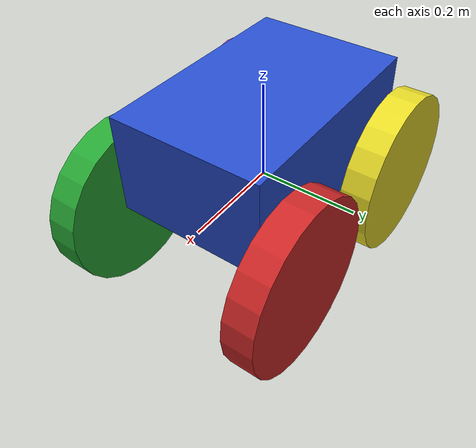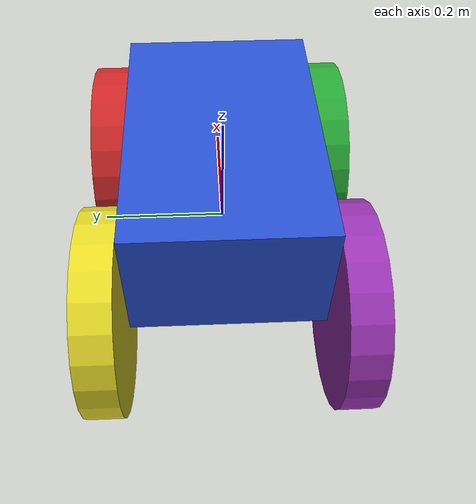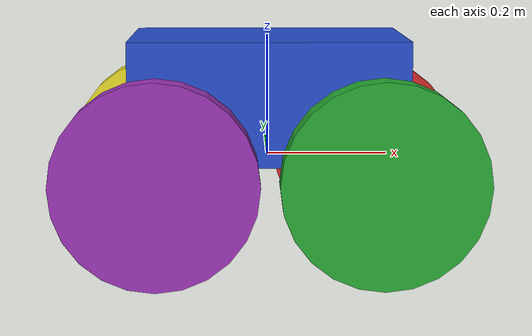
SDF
<sdf version='1.11'>
  <model name='qwacr'>
    <link name='base_link'>
      <inertial>
        <pose>0 0 0 0 0 0</pose>
        <mass>25</mass>
        <inertia>
          <ixx>0.050000000000000003</ixx>
          <ixy>0</ixy>
          <ixz>0</ixz>
          <iyy>0.059999999999999998</iyy>
          <iyz>0</iyz>
          <izz>0.070000000000000007</izz>
        </inertia>
      </inertial>
      <collision name='base_link_collision'>
        <pose>0 0 0.10000000000000001 0 0 0</pose>
        <geometry>
          <box>
            <size>0.45000000000000001 0.29999999999999999 0.20000000000000001</size>
          </box>
        </geometry>
        <surface>
          <contact>
            <ode/>
          </contact>
          <friction>
            <ode/>
          </friction>
        </surface>
      </collision>
      <visual name='base_link_visual'>
        <pose>0 0 0.10000000000000001 0 0 0</pose>
        <geometry>
          <box>
            <size>0.45000000000000001 0.29999999999999999 0.20000000000000001</size>
          </box>
        </geometry>
        <material>
          <script>
            <name>Gazebo/Blue</name>
            <uri>file://media/materials/scripts/gazebo.material</uri>
          </script>
          <diffuse>0 0 1 1</diffuse>
          <ambient>0 0 1 1</ambient>
        </material>
      </visual>
    </link>
    <joint name='base_to_back_left_wheel' type='revolute'>
      <pose relative_to='base_link'>-0.17999999999999999 0.19 -0.02 0 0 0</pose>
      <parent>base_link</parent>
      <child>back_left_wheel_link</child>
      <axis>
        <xyz>0 1 0</xyz>
        <limit>
          <effort>6.2000000000000002</effort>
          <velocity>104</velocity>
          <lower>-inf</lower>
          <upper>inf</upper>
        </limit>
        <dynamics>
          <damping>0.0001</damping>
          <friction>0.001</friction>
          <spring_reference>0</spring_reference>
          <spring_stiffness>0</spring_stiffness>
        </dynamics>
      </axis>
    </joint>
    <link name='back_left_wheel_link'>
      <pose relative_to='base_to_back_left_wheel'>0 0 0 0 0 0</pose>
      <inertial>
        <pose>0 0 0 0 0 0</pose>
        <mass>3</mass>
        <inertia>
          <ixx>0.002</ixx>
          <ixy>0</ixy>
          <ixz>0</ixz>
          <iyy>0.002</iyy>
          <iyz>0</iyz>
          <izz>0.002</izz>
        </inertia>
      </inertial>
      <collision name='back_left_wheel_link_collision'>
        <pose>0 0 0 1.5708 0 0</pose>
        <geometry>
          <cylinder>
            <length>0.059999999999999998</length>
            <radius>0.16500000000000001</radius>
          </cylinder>
        </geometry>
        <surface>
          <contact>
            <ode/>
          </contact>
          <friction>
            <ode/>
          </friction>
        </surface>
      </collision>
      <visual name='back_left_wheel_link_visual'>
        <pose>0 0 0 1.5708 0 0</pose>
        <geometry>
          <cylinder>
            <length>0.059999999999999998</length>
            <radius>0.16500000000000001</radius>
          </cylinder>
        </geometry>
        <material>
          <script>
            <name>Gazebo/Yellow</name>
            <uri>file://media/materials/scripts/gazebo.material</uri>
          </script>
          <diffuse>1 1 0 1</diffuse>
          <ambient>1 1 0 1</ambient>
        </material>
      </visual>
    </link>
    <joint name='base_to_back_right_wheel' type='revolute'>
      <pose relative_to='base_link'>-0.17999999999999999 -0.19 -0.02 0 0 0</pose>
      <parent>base_link</parent>
      <child>back_right_wheel_link</child>
      <axis>
        <xyz>0 1 0</xyz>
        <limit>
          <effort>6.2000000000000002</effort>
          <velocity>104</velocity>
          <lower>-inf</lower>
          <upper>inf</upper>
        </limit>
        <dynamics>
          <damping>0.0001</damping>
          <friction>0.001</friction>
          <spring_reference>0</spring_reference>
          <spring_stiffness>0</spring_stiffness>
        </dynamics>
      </axis>
    </joint>
    <link name='back_right_wheel_link'>
      <pose relative_to='base_to_back_right_wheel'>0 0 0 0 0 0</pose>
      <inertial>
        <pose>0 0 0 0 0 0</pose>
        <mass>3</mass>
        <inertia>
          <ixx>0.002</ixx>
          <ixy>0</ixy>
          <ixz>0</ixz>
          <iyy>0.002</iyy>
          <iyz>0</iyz>
          <izz>0.002</izz>
        </inertia>
      </inertial>
      <collision name='back_right_wheel_link_collision'>
        <pose>0 0 0 1.5708 0 0</pose>
        <geometry>
          <cylinder>
            <length>0.059999999999999998</length>
            <radius>0.16500000000000001</radius>
          </cylinder>
        </geometry>
        <surface>
          <contact>
            <ode/>
          </contact>
          <friction>
            <ode/>
          </friction>
        </surface>
      </collision>
      <visual name='back_right_wheel_link_visual'>
        <pose>0 0 0 1.5708 0 0</pose>
        <geometry>
          <cylinder>
            <length>0.059999999999999998</length>
            <radius>0.16500000000000001</radius>
          </cylinder>
        </geometry>
        <material>
          <script>
            <name>Gazebo/Purple</name>
            <uri>file://media/materials/scripts/gazebo.material</uri>
          </script>
          <diffuse>1 0 1 1</diffuse>
          <ambient>1 0 1 1</ambient>
        </material>
      </visual>
    </link>
    <joint name='base_to_front_left_wheel' type='revolute'>
      <pose relative_to='base_link'>0.17999999999999999 0.19 -0.02 0 0 0</pose>
      <parent>base_link</parent>
      <child>front_left_wheel_link</child>
      <axis>
        <xyz>0 1 0</xyz>
        <limit>
          <effort>6.2000000000000002</effort>
          <velocity>104</velocity>
          <lower>-inf</lower>
          <upper>inf</upper>
        </limit>
        <dynamics>
          <damping>0.0001</damping>
          <friction>0.001</friction>
          <spring_reference>0</spring_reference>
          <spring_stiffness>0</spring_stiffness>
        </dynamics>
      </axis>
    </joint>
    <link name='front_left_wheel_link'>
      <pose relative_to='base_to_front_left_wheel'>0 0 0 0 0 0</pose>
      <inertial>
        <pose>0 0 0 0 0 0</pose>
        <mass>1</mass>
        <inertia>
          <ixx>0.001</ixx>
          <ixy>0</ixy>
          <ixz>0</ixz>
          <iyy>0.001</iyy>
          <iyz>0</iyz>
          <izz>0.001</izz>
        </inertia>
      </inertial>
      <collision name='front_left_wheel_link_collision'>
        <pose>0 0 0 1.5708 0 0</pose>
        <geometry>
          <cylinder>
            <length>0.059999999999999998</length>
            <radius>0.16500000000000001</radius>
          </cylinder>
        </geometry>
        <surface>
          <contact>
            <ode/>
          </contact>
          <friction>
            <ode/>
          </friction>
        </surface>
      </collision>
      <visual name='front_left_wheel_link_visual'>
        <pose>0 0 0 1.5708 0 0</pose>
        <geometry>
          <cylinder>
            <length>0.059999999999999998</length>
            <radius>0.16500000000000001</radius>
          </cylinder>
        </geometry>
        <material>
          <script>
            <name>Gazebo/Red</name>
            <uri>file://media/materials/scripts/gazebo.material</uri>
          </script>
          <diffuse>1 0 0 1</diffuse>
          <ambient>1 0 0 1</ambient>
        </material>
      </visual>
    </link>
    <joint name='base_to_front_right_wheel' type='revolute'>
      <pose relative_to='base_link'>0.17999999999999999 -0.19 -0.02 0 0 0</pose>
      <parent>base_link</parent>
      <child>front_right_wheel_link</child>
      <axis>
        <xyz>0 1 0</xyz>
        <limit>
          <effort>6.2000000000000002</effort>
          <velocity>104</velocity>
          <lower>-inf</lower>
          <upper>inf</upper>
        </limit>
        <dynamics>
          <damping>0.0001</damping>
          <friction>0.001</friction>
          <spring_reference>0</spring_reference>
          <spring_stiffness>0</spring_stiffness>
        </dynamics>
      </axis>
    </joint>
    <link name='front_right_wheel_link'>
      <pose relative_to='base_to_front_right_wheel'>0 0 0 0 0 0</pose>
      <inertial>
        <pose>0 0 0 0 0 0</pose>
        <mass>1</mass>
        <inertia>
          <ixx>0.001</ixx>
          <ixy>0</ixy>
          <ixz>0</ixz>
          <iyy>0.001</iyy>
          <iyz>0</iyz>
          <izz>0.001</izz>
        </inertia>
      </inertial>
      <collision name='front_right_wheel_link_collision'>
        <pose>0 0 0 1.5708 0 0</pose>
        <geometry>
          <cylinder>
            <length>0.059999999999999998</length>
            <radius>0.16500000000000001</radius>
          </cylinder>
        </geometry>
        <surface>
          <contact>
            <ode/>
          </contact>
          <friction>
            <ode/>
          </friction>
        </surface>
      </collision>
      <visual name='front_right_wheel_link_visual'>
        <pose>0 0 0 1.5708 0 0</pose>
        <geometry>
          <cylinder>
            <length>0.059999999999999998</length>
            <radius>0.16500000000000001</radius>
          </cylinder>
        </geometry>
        <material>
          <script>
            <name>Gazebo/Green</name>
            <uri>file://media/materials/scripts/gazebo.material</uri>
          </script>
          <diffuse>0 1 0 1</diffuse>
          <ambient>0 1 0 1</ambient>
        </material>
      </visual>
    </link>

    <!-- ros2_control tag for gz_ros2_control -->
    <ros2_control name="GazeboSystem" type="system">
      <hardware>
        <plugin>gz_ros2_control/GazeboSimSystem</plugin>
      </hardware>
      <joint name="base_to_front_left_wheel">
        <command_interface name="velocity"/>
        <state_interface name="position"/>
        <state_interface name="velocity"/>
      </joint>
      <joint name="base_to_front_right_wheel">
        <command_interface name="velocity"/>
        <state_interface name="position"/>
        <state_interface name="velocity"/>
      </joint>
      <joint name="base_to_back_left_wheel">
        <command_interface name="velocity"/>
        <state_interface name="position"/>
        <state_interface name="velocity"/>
      </joint>
      <joint name="base_to_back_right_wheel">
        <command_interface name="velocity"/>
        <state_interface name="position"/>
        <state_interface name="velocity"/>
      </joint>
    </ros2_control>

    <plugin name='gz_ros2_control::GazeboSimROS2ControlPlugin' filename='libgz_ros2_control-system.so'>
      <parameters>/home/kyle/qwacr_ws/install/qwacr_build/share/qwacr_build/config/diff_drive_controller.yaml</parameters>
    </plugin>
  </model>
</sdf>
